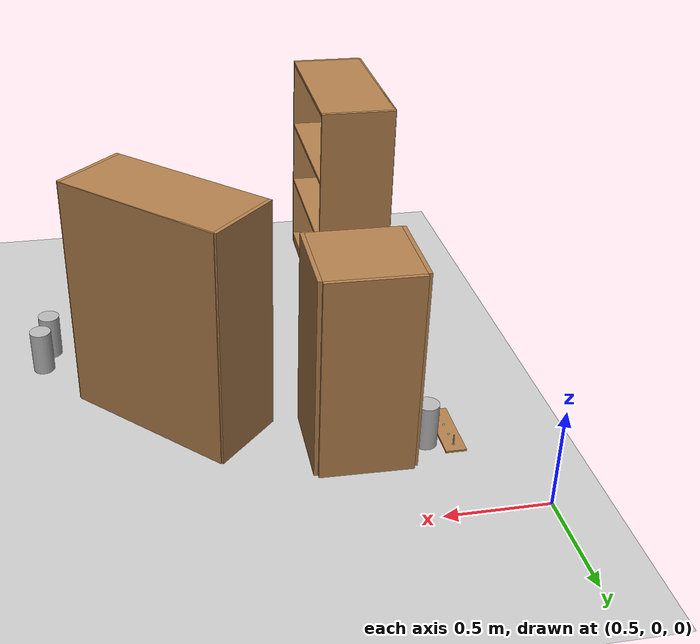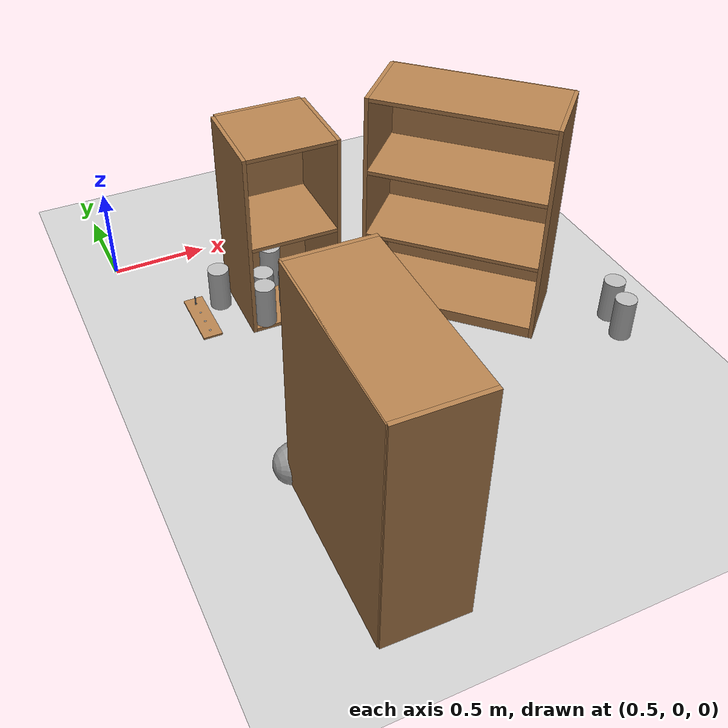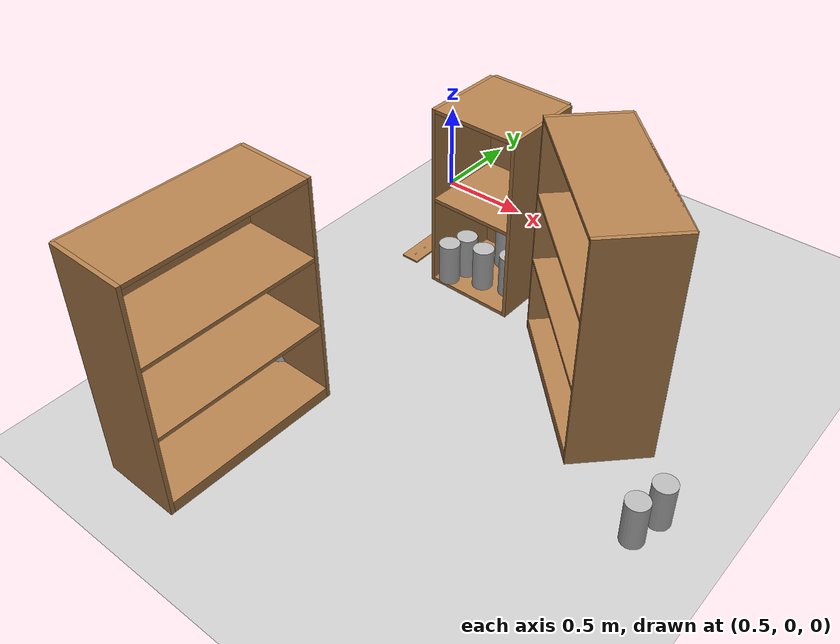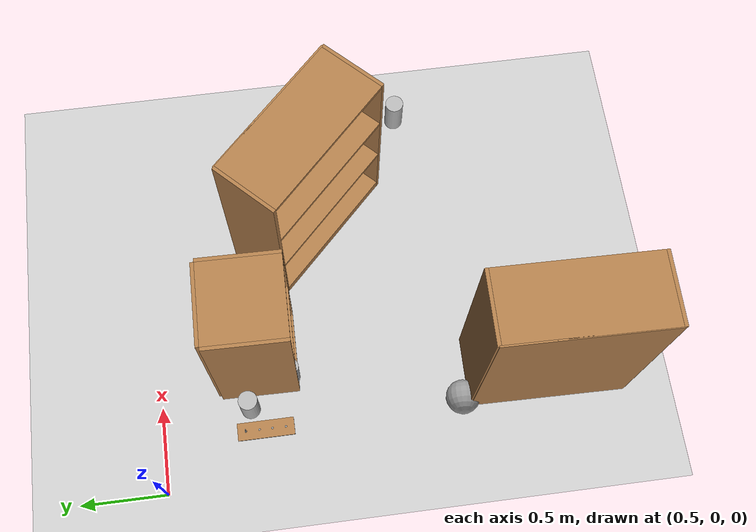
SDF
<sdf version="1.6">
 <world name="default">
  <model name="ground_plane">
   <static>1</static>
   <link name="link">
    <collision name="collision">
     <geometry><plane><normal>0 0 1</normal><size>100 100</size></plane></geometry>
     <surface><friction><ode><mu>100</mu><mu2>50</mu2></ode></friction></surface>
    </collision>
    <visual name="visual">
     <cast_shadows>0</cast_shadows>
     <geometry><plane><normal>0 0 1</normal><size>100 100</size></plane></geometry>
     <material>
      <script><uri>file://media/materials/scripts/gazebo.material</uri><name>Gazebo/Grey</name></script>
     </material>
    </visual>
   </link>
  </model>
  <model name="bookshelf_1">
   <static>1</static>
   <link name="link">
    <inertial><mass>1</mass></inertial>
    <collision name="back">
     <pose>0 0.005 0.6 0 -0 0</pose>
     <geometry><box><size>0.9 0.01 1.2</size></box></geometry>
    </collision>
    <visual name="visual1">
     <pose>0 0.005 0.6 0 -0 0</pose>
     <geometry><box><size>0.9 0.01 1.2</size></box></geometry>
     <material>
      <script><uri>file://media/materials/scripts/gazebo.material</uri><name>Gazebo/Wood</name></script>
     </material>
    </visual>
    <collision name="left_side">
     <pose>0.45 -0.195 0.6 0 -0 0</pose>
     <geometry><box><size>0.02 0.4 1.2</size></box></geometry>
    </collision>
    <visual name="visual2">
     <pose>0.45 -0.195 0.6 0 -0 0</pose>
     <geometry><box><size>0.02 0.4 1.2</size></box></geometry>
     <material>
      <script><uri>file://media/materials/scripts/gazebo.material</uri><name>Gazebo/Wood</name></script>
     </material>
    </visual>
    <collision name="right_side">
     <pose>-0.45 -0.195 0.6 0 -0 0</pose>
     <geometry><box><size>0.02 0.4 1.2</size></box></geometry>
    </collision>
    <visual name="visual3">
     <pose>-0.45 -0.195 0.6 0 -0 0</pose>
     <geometry><box><size>0.02 0.4 1.2</size></box></geometry>
     <material>
      <script><uri>file://media/materials/scripts/gazebo.material</uri><name>Gazebo/Wood</name></script>
     </material>
    </visual>
    <collision name="bottom">
     <pose>0 -0.195 0.03 0 -0 0</pose>
     <geometry><box><size>0.88 0.4 0.06</size></box></geometry>
    </collision>
    <visual name="visual4">
     <pose>0 -0.195 0.03 0 -0 0</pose>
     <geometry><box><size>0.88 0.4 0.06</size></box></geometry>
     <material>
      <script><uri>file://media/materials/scripts/gazebo.material</uri><name>Gazebo/Wood</name></script>
     </material>
    </visual>
    <collision name="top">
     <pose>0 -0.195 1.19 0 -0 0</pose>
     <geometry><box><size>0.88 0.4 0.02</size></box></geometry>
    </collision>
    <visual name="visual5">
     <pose>0 -0.195 1.19 0 -0 0</pose>
     <geometry><box><size>0.88 0.4 0.02</size></box></geometry>
     <material>
      <script><uri>file://media/materials/scripts/gazebo.material</uri><name>Gazebo/Wood</name></script>
     </material>
    </visual>
    <collision name="low_shelf">
     <pose>0 -0.195 0.43 0 -0 0</pose>
     <geometry><box><size>0.88 0.4 0.02</size></box></geometry>
    </collision>
    <visual name="visual6">
     <pose>0 -0.195 0.43 0 -0 0</pose>
     <geometry><box><size>0.88 0.4 0.02</size></box></geometry>
     <material>
      <script><uri>file://media/materials/scripts/gazebo.material</uri><name>Gazebo/Wood</name></script>
     </material>
    </visual>
    <collision name="high_shelf">
     <pose>0 -0.195 0.8 0 -0 0</pose>
     <geometry><box><size>0.88 0.4 0.02</size></box></geometry>
    </collision>
    <visual name="visual7">
     <pose>0 -0.195 0.8 0 -0 0</pose>
     <geometry><box><size>0.88 0.4 0.02</size></box></geometry>
     <material>
      <script><uri>file://media/materials/scripts/gazebo.material</uri><name>Gazebo/Wood</name></script>
     </material>
    </visual>
   </link>
   <pose>0.794142 -2.23341 0 0 -0 1.55315</pose>
  </model>
  <model name="cabinet_0">
   <static>1</static>
   <link name="cabinet_bottom_plate">
    <inertial>
     <pose>0 0 -1 0 -0 0</pose>
     <inertia><ixx>2.05</ixx><ixy>0</ixy><ixz>0</ixz><iyy>2.05</iyy><iyz>0</iyz><izz>2.05</izz></inertia>
     <mass>25</mass>
    </inertial>
    <collision name="cabinet_bottom_plate_geom">
     <pose>0 0 0.01 0 -0 0</pose>
     <geometry><box><size>0.45 0.45 0.02</size></box></geometry>
    </collision>
    <visual name="cabinet_bottom_plate_geom_visual">
     <pose>0 0 0.01 0 -0 0</pose>
     <geometry><box><size>0.45 0.45 0.02</size></box></geometry>
     <material>
      <script><uri>file://media/materials/scripts/gazebo.material</uri><name>Gazebo/Wood</name></script>
     </material>
    </visual>
    <collision name="cabinet_bottom_plate_geom_cabinet_back_plate">
     <pose>0.235 0 0.51 0 -0 0</pose>
     <geometry><box><size>0.02 0.45 1.02</size></box></geometry>
    </collision>
    <visual name="cabinet_bottom_plate_geom_cabinet_back_plate_visual">
     <pose>0.235 0 0.51 0 -0 0</pose>
     <geometry><box><size>0.02 0.45 1.02</size></box></geometry>
     <material>
      <script><uri>file://media/materials/scripts/gazebo.material</uri><name>Gazebo/Wood</name></script>
     </material>
    </visual>
    <collision name="cabinet_bottom_plate_geom_cabinet_left_plate">
     <pose>0 0.235 0.51 0 -0 0</pose>
     <geometry><box><size>0.45 0.02 1.02</size></box></geometry>
    </collision>
    <visual name="cabinet_bottom_plate_geom_cabinet_left_plate_visual">
     <pose>0 0.235 0.51 0 -0 0</pose>
     <geometry><box><size>0.45 0.02 1.02</size></box></geometry>
     <material>
      <script><uri>file://media/materials/scripts/gazebo.material</uri><name>Gazebo/Wood</name></script>
     </material>
    </visual>
    <collision name="cabinet_bottom_plate_geom_cabinet_middle_plate">
     <pose>0 0 0.51 0 -0 0</pose>
     <geometry><box><size>0.45 0.45 0.02</size></box></geometry>
    </collision>
    <visual name="cabinet_bottom_plate_geom_cabinet_middle_plate_visual">
     <pose>0 0 0.51 0 -0 0</pose>
     <geometry><box><size>0.45 0.45 0.02</size></box></geometry>
     <material>
      <script><uri>file://media/materials/scripts/gazebo.material</uri><name>Gazebo/Wood</name></script>
     </material>
    </visual>
    <collision name="cabinet_bottom_plate_geom_cabinet_right_plate">
     <pose>0 -0.235 0.51 0 -0 0</pose>
     <geometry><box><size>0.45 0.02 1.02</size></box></geometry>
    </collision>
    <visual name="cabinet_bottom_plate_geom_cabinet_right_plate_visual">
     <pose>0 -0.235 0.51 0 -0 0</pose>
     <geometry><box><size>0.45 0.02 1.02</size></box></geometry>
     <material>
      <script><uri>file://media/materials/scripts/gazebo.material</uri><name>Gazebo/Wood</name></script>
     </material>
    </visual>
    <collision name="cabinet_bottom_plate_geom_cabinet_top_plate">
     <pose>0 0 1.01 0 -0 0</pose>
     <geometry><box><size>0.45 0.45 0.02</size></box></geometry>
    </collision>
    <visual name="cabinet_bottom_plate_geom_cabinet_top_plate_visual">
     <pose>0 0 1.01 0 -0 0</pose>
     <geometry><box><size>0.45 0.45 0.02</size></box></geometry>
     <material>
      <script><uri>file://media/materials/scripts/gazebo.material</uri><name>Gazebo/Wood</name></script>
     </material>
    </visual>
   </link>
   <pose>1.25355 -0.582326 0 0 -0 1.55362</pose>
  </model>
  <model name="bookshelf_2">
   <static>1</static>
   <link name="link">
    <inertial><mass>1</mass></inertial>
    <collision name="back">
     <pose>0 0.005 0.6 0 -0 0</pose>
     <geometry><box><size>0.9 0.01 1.2</size></box></geometry>
    </collision>
    <visual name="visual1">
     <pose>0 0.005 0.6 0 -0 0</pose>
     <geometry><box><size>0.9 0.01 1.2</size></box></geometry>
     <material>
      <script><uri>file://media/materials/scripts/gazebo.material</uri><name>Gazebo/Wood</name></script>
     </material>
    </visual>
    <collision name="left_side">
     <pose>0.45 -0.195 0.6 0 -0 0</pose>
     <geometry><box><size>0.02 0.4 1.2</size></box></geometry>
    </collision>
    <visual name="visual2">
     <pose>0.45 -0.195 0.6 0 -0 0</pose>
     <geometry><box><size>0.02 0.4 1.2</size></box></geometry>
     <material>
      <script><uri>file://media/materials/scripts/gazebo.material</uri><name>Gazebo/Wood</name></script>
     </material>
    </visual>
    <collision name="right_side">
     <pose>-0.45 -0.195 0.6 0 -0 0</pose>
     <geometry><box><size>0.02 0.4 1.2</size></box></geometry>
    </collision>
    <visual name="visual3">
     <pose>-0.45 -0.195 0.6 0 -0 0</pose>
     <geometry><box><size>0.02 0.4 1.2</size></box></geometry>
     <material>
      <script><uri>file://media/materials/scripts/gazebo.material</uri><name>Gazebo/Wood</name></script>
     </material>
    </visual>
    <collision name="bottom">
     <pose>0 -0.195 0.03 0 -0 0</pose>
     <geometry><box><size>0.88 0.4 0.06</size></box></geometry>
    </collision>
    <visual name="visual4">
     <pose>0 -0.195 0.03 0 -0 0</pose>
     <geometry><box><size>0.88 0.4 0.06</size></box></geometry>
     <material>
      <script><uri>file://media/materials/scripts/gazebo.material</uri><name>Gazebo/Wood</name></script>
     </material>
    </visual>
    <collision name="top">
     <pose>0 -0.195 1.19 0 -0 0</pose>
     <geometry><box><size>0.88 0.4 0.02</size></box></geometry>
    </collision>
    <visual name="visual5">
     <pose>0 -0.195 1.19 0 -0 0</pose>
     <geometry><box><size>0.88 0.4 0.02</size></box></geometry>
     <material>
      <script><uri>file://media/materials/scripts/gazebo.material</uri><name>Gazebo/Wood</name></script>
     </material>
    </visual>
    <collision name="low_shelf">
     <pose>0 -0.195 0.43 0 -0 0</pose>
     <geometry><box><size>0.88 0.4 0.02</size></box></geometry>
    </collision>
    <visual name="visual6">
     <pose>0 -0.195 0.43 0 -0 0</pose>
     <geometry><box><size>0.88 0.4 0.02</size></box></geometry>
     <material>
      <script><uri>file://media/materials/scripts/gazebo.material</uri><name>Gazebo/Wood</name></script>
     </material>
    </visual>
    <collision name="high_shelf">
     <pose>0 -0.195 0.8 0 -0 0</pose>
     <geometry><box><size>0.88 0.4 0.02</size></box></geometry>
    </collision>
    <visual name="visual7">
     <pose>0 -0.195 0.8 0 -0 0</pose>
     <geometry><box><size>0.88 0.4 0.02</size></box></geometry>
     <material>
      <script><uri>file://media/materials/scripts/gazebo.material</uri><name>Gazebo/Wood</name></script>
     </material>
    </visual>
   </link>
   <pose>2.22399 -0.837147 0 0 0 -0.779094</pose>
  </model>
  <model name="beer_9">
   <link name="link">
    <pose>0 0 0.115 0 -0 0</pose>
    <inertial>
     <mass>0.39</mass>
     <inertia><ixx>0.00058</ixx><ixy>0</ixy><ixz>0</ixz><iyy>0.00058</iyy><iyz>0</iyz><izz>0.00019</izz></inertia>
    </inertial>
    <collision name="collision">
     <geometry><cylinder><radius>0.055</radius><length>0.23</length></cylinder></geometry>
    </collision>
    <visual name="visual">
     <geometry><cylinder><radius>0.055</radius><length>0.23</length></cylinder></geometry>
     <material>
      <script>
       <uri>model://beer/materials/scripts</uri>
       <uri>model://beer/materials/textures</uri>
       <name>Beer/Diffuse</name>
      </script>
     </material>
    </visual>
   </link>
   <pose>1.12299 -0.654374 0.019992 2.8e-05 1.4e-05 -0.00199</pose>
  </model>
  <model name="beer_10">
   <link name="link">
    <pose>0 0 0.115 0 -0 0</pose>
    <inertial>
     <mass>0.39</mass>
     <inertia><ixx>0.00058</ixx><ixy>0</ixy><ixz>0</ixz><iyy>0.00058</iyy><iyz>0</iyz><izz>0.00019</izz></inertia>
    </inertial>
    <collision name="collision">
     <geometry><cylinder><radius>0.055</radius><length>0.23</length></cylinder></geometry>
    </collision>
    <visual name="visual">
     <geometry><cylinder><radius>0.055</radius><length>0.23</length></cylinder></geometry>
     <material>
      <script>
       <uri>model://beer/materials/scripts</uri>
       <uri>model://beer/materials/textures</uri>
       <name>Beer/Diffuse</name>
      </script>
     </material>
    </visual>
   </link>
   <pose>1.254 -0.686057 0.019992 2.6e-05 2e-06 0.002284</pose>
  </model>
  <model name="beer_11">
   <link name="link">
    <pose>0 0 0.115 0 -0 0</pose>
    <inertial>
     <mass>0.39</mass>
     <inertia><ixx>0.00058</ixx><ixy>0</ixy><ixz>0</ixz><iyy>0.00058</iyy><iyz>0</iyz><izz>0.00019</izz></inertia>
    </inertial>
    <collision name="collision">
     <geometry><cylinder><radius>0.055</radius><length>0.23</length></cylinder></geometry>
    </collision>
    <visual name="visual">
     <geometry><cylinder><radius>0.055</radius><length>0.23</length></cylinder></geometry>
     <material>
      <script>
       <uri>model://beer/materials/scripts</uri>
       <uri>model://beer/materials/textures</uri>
       <name>Beer/Diffuse</name>
      </script>
     </material>
    </visual>
   </link>
   <pose>1.39383 -0.647676 0.019992 2.5e-05 -2e-05 -0.002157</pose>
  </model>
  <model name="beer_12">
   <link name="link">
    <pose>0 0 0.115 0 -0 0</pose>
    <inertial>
     <mass>0.39</mass>
     <inertia><ixx>0.00058</ixx><ixy>0</ixy><ixz>0</ixz><iyy>0.00058</iyy><iyz>0</iyz><izz>0.00019</izz></inertia>
    </inertial>
    <collision name="collision">
     <geometry><cylinder><radius>0.055</radius><length>0.23</length></cylinder></geometry>
    </collision>
    <visual name="visual">
     <geometry><cylinder><radius>0.055</radius><length>0.23</length></cylinder></geometry>
     <material>
      <script>
       <uri>model://beer/materials/scripts</uri>
       <uri>model://beer/materials/textures</uri>
       <name>Beer/Diffuse</name>
      </script>
     </material>
    </visual>
   </link>
   <pose>1.23577 -0.463257 0.020002 3.7e-05 2.3e-05 0.001024</pose>
  </model>
  <model name="beer_13">
   <link name="link">
    <pose>0 0 0.115 0 -0 0</pose>
    <inertial>
     <mass>0.39</mass>
     <inertia><ixx>0.00058</ixx><ixy>0</ixy><ixz>0</ixz><iyy>0.00058</iyy><iyz>0</iyz><izz>0.00019</izz></inertia>
    </inertial>
    <collision name="collision">
     <geometry><cylinder><radius>0.055</radius><length>0.23</length></cylinder></geometry>
    </collision>
    <visual name="visual">
     <geometry><cylinder><radius>0.055</radius><length>0.23</length></cylinder></geometry>
     <material>
      <script>
       <uri>model://beer/materials/scripts</uri>
       <uri>model://beer/materials/textures</uri>
       <name>Beer/Diffuse</name>
      </script>
     </material>
    </visual>
   </link>
   <pose>1.09037 -0.759426 0.020002 2.7e-05 -7e-06 -0.059388</pose>
  </model>
  <model name="beer_14">
   <link name="link">
    <pose>0 0 0.115 0 -0 0</pose>
    <inertial>
     <mass>0.39</mass>
     <inertia><ixx>0.00058</ixx><ixy>0</ixy><ixz>0</ixz><iyy>0.00058</iyy><iyz>0</iyz><izz>0.00019</izz></inertia>
    </inertial>
    <collision name="collision">
     <geometry><cylinder><radius>0.055</radius><length>0.23</length></cylinder></geometry>
    </collision>
    <visual name="visual">
     <geometry><cylinder><radius>0.055</radius><length>0.23</length></cylinder></geometry>
     <material>
      <script>
       <uri>model://beer/materials/scripts</uri>
       <uri>model://beer/materials/textures</uri>
       <name>Beer/Diffuse</name>
      </script>
     </material>
    </visual>
   </link>
   <pose>0.931321 -0.508087 -7e-06 -1e-06 -0 -3.5e-05</pose>
  </model>
  <model name="beer_20">
   <link name="link">
    <pose>0 0 0.115 0 -0 0</pose>
    <inertial>
     <mass>0.39</mass>
     <inertia><ixx>0.00058</ixx><ixy>0</ixy><ixz>0</ixz><iyy>0.00058</iyy><iyz>0</iyz><izz>0.00019</izz></inertia>
    </inertial>
    <collision name="collision">
     <geometry><cylinder><radius>0.055</radius><length>0.23</length></cylinder></geometry>
    </collision>
    <visual name="visual">
     <geometry><cylinder><radius>0.055</radius><length>0.23</length></cylinder></geometry>
     <material>
      <script>
       <uri>model://beer/materials/scripts</uri>
       <uri>model://beer/materials/textures</uri>
       <name>Beer/Diffuse</name>
      </script>
     </material>
    </visual>
   </link>
   <pose>2.74055 -1.44972 -8e-06 -1e-06 -0 -0.011073</pose>
  </model>
  <model name="beer_21">
   <link name="link">
    <pose>0 0 0.115 0 -0 0</pose>
    <inertial>
     <mass>0.39</mass>
     <inertia><ixx>0.00058</ixx><ixy>0</ixy><ixz>0</ixz><iyy>0.00058</iyy><iyz>0</iyz><izz>0.00019</izz></inertia>
    </inertial>
    <collision name="collision">
     <geometry><cylinder><radius>0.055</radius><length>0.23</length></cylinder></geometry>
    </collision>
    <visual name="visual">
     <geometry><cylinder><radius>0.055</radius><length>0.23</length></cylinder></geometry>
     <material>
      <script>
       <uri>model://beer/materials/scripts</uri>
       <uri>model://beer/materials/textures</uri>
       <name>Beer/Diffuse</name>
      </script>
     </material>
    </visual>
   </link>
   <pose>2.70425 -1.59811 0.000865 0.014242 -0.006713 -1.58114</pose>
  </model>
  <model name="metal_peg_board_5">
   <link name="wooden_board::base">
    <pose>0 0 0.00523 0 -0 0</pose>
    <inertial>
     <mass>0.2765</mass>
     <inertia>
      <ixx>0.0025148</ixx>
      <ixy>0</ixy>
      <ixz>0</ixz>
      <iyy>0.00024037</iyy>
      <iyz>0</iyz>
      <izz>0.00275013</izz>
     </inertia>
    </inertial>
    <collision name="collision">
     <geometry><box><size>0.1016 0.3302 0.01046</size></box></geometry>
     <surface>
      <contact>
       <poissons_ratio>0.347</poissons_ratio>
       <elastic_modulus>8.8e+09</elastic_modulus>
       <ode><kp>100000</kp><kd>100</kd><max_vel>100</max_vel><min_depth>0.001</min_depth></ode>
      </contact>
      <friction>
       <torsional>
        <coefficient>1</coefficient>
        <use_patch_radius>0</use_patch_radius>
        <surface_radius>0.01</surface_radius>
       </torsional>
      </friction>
     </surface>
    </collision>
    <visual name="visual">
     <geometry><box><size>0.1016 0.3302 0.01046</size></box></geometry>
     <material>
      <script><uri>file://media/materials/scripts/gazebo.material</uri><name>Gazebo/Wood</name></script>
     </material>
    </visual>
    <visual name="tee_nut_1">
     <pose>0 -0.116 0 0 -0 0</pose>
     <geometry><cylinder><radius>0.00635</radius><length>0.0105646</length></cylinder></geometry>
     <material>
      <script><uri>file://media/materials/scripts/gazebo.material</uri><name>Gazebo/Grey</name></script>
     </material>
    </visual>
    <visual name="tee_nut_2">
     <pose>0 -0.038 0 0 -0 0</pose>
     <geometry><cylinder><radius>0.00635</radius><length>0.0105646</length></cylinder></geometry>
     <material>
      <script><uri>file://media/materials/scripts/gazebo.material</uri><name>Gazebo/Grey</name></script>
     </material>
    </visual>
    <visual name="tee_nut_3">
     <pose>0 0.038 0 0 -0 0</pose>
     <geometry><cylinder><radius>0.00635</radius><length>0.0105646</length></cylinder></geometry>
     <material>
      <script><uri>file://media/materials/scripts/gazebo.material</uri><name>Gazebo/Grey</name></script>
     </material>
    </visual>
    <visual name="tee_nut_4">
     <pose>0 0.116 0 0 -0 0</pose>
     <geometry><cylinder><radius>0.00635</radius><length>0.0105646</length></cylinder></geometry>
     <material>
      <script><uri>file://media/materials/scripts/gazebo.material</uri><name>Gazebo/Grey</name></script>
     </material>
    </visual>
   </link>
   <link name="peg::link">
    <pose>0 0.116 0.031 0 -0 0</pose>
    <inertial>
     <mass>0.0121</mass>
     <inertia>
      <ixx>3.90898e-06</ixx>
      <ixy>0</ixy>
      <ixz>0</ixz>
      <iyy>3.90898e-06</iyy>
      <iyz>0</iyz>
      <izz>6.58845e-08</izz>
     </inertia>
    </inertial>
    <collision name="collision">
     <geometry><cylinder><radius>0.0033</radius><length>0.062</length></cylinder></geometry>
     <surface>
      <contact>
       <poissons_ratio>0.305</poissons_ratio>
       <elastic_modulus>2e+11</elastic_modulus>
       <ode><kp>100000</kp><kd>100</kd><max_vel>100</max_vel><min_depth>0.001</min_depth></ode>
      </contact>
      <friction>
       <torsional>
        <coefficient>1</coefficient>
        <use_patch_radius>0</use_patch_radius>
        <surface_radius>0.01</surface_radius>
       </torsional>
      </friction>
     </surface>
    </collision>
    <visual name="visual">
     <geometry><cylinder><radius>0.0033</radius><length>0.062</length></cylinder></geometry>
     <material>
      <script><uri>file://media/materials/scripts/gazebo.material</uri><name>Gazebo/Grey</name></script>
     </material>
    </visual>
   </link>
   <joint name="board_peg" type="revolute">
    <parent>wooden_board::base</parent>
    <child>peg::link</child>
    <axis>
     <xyz>0 0 1</xyz>
     <limit><upper>0</upper><lower>0</lower></limit>
     <use_parent_model_frame>0</use_parent_model_frame>
     <dynamics><spring_reference>0</spring_reference><spring_stiffness>0</spring_stiffness></dynamics>
    </axis>
   </joint>
   <pose>0.804705 -0.582834 -0.001003 4e-06 2.3e-05 0.000197</pose>
  </model>
  <model name="my_ball_3">
   <link name="link_0">
    <inertial>
     <mass>1</mass>
     <inertia><ixx>0.1</ixx><ixy>0</ixy><ixz>0</ixz><iyy>0.1</iyy><iyz>0</iyz><izz>0.1</izz></inertia>
    </inertial>
    <visual name="visual">
     <geometry><sphere><radius>0.1</radius></sphere></geometry>
     <material>
      <lighting>1</lighting>
      <script><uri>file://media/materials/scripts/gazebo.material</uri><name>Gazebo/Grey</name></script>
      <shader type="pixel"><normal_map>__default__</normal_map></shader>
      <ambient>1 1 1 1</ambient>
      <diffuse>1 1 1 1</diffuse>
      <specular>1 1 1 1</specular>
      <emissive>0 0 0 1</emissive>
     </material>
    </visual>
    <collision name="collision">
     <geometry><sphere><radius>0.1</radius></sphere></geometry>
     <surface>
      <friction>
       <ode><mu>1</mu><mu2>1</mu2><fdir1>0 0 0</fdir1><slip1>0</slip1><slip2>0</slip2></ode>
       <torsional>
        <coefficient>1</coefficient>
        <patch_radius>0</patch_radius>
        <surface_radius>0</surface_radius>
        <use_patch_radius>1</use_patch_radius>
        <ode><slip>0</slip></ode>
       </torsional>
      </friction>
      <bounce><restitution_coefficient>0</restitution_coefficient><threshold>1e+06</threshold></bounce>
      <contact>
       <collide_without_contact>0</collide_without_contact>
       <collide_without_contact_bitmask>1</collide_without_contact_bitmask>
       <collide_bitmask>1</collide_bitmask>
       <ode>
        <soft_cfm>0</soft_cfm>
        <soft_erp>0.2</soft_erp>
        <kp>1e+13</kp>
        <kd>1</kd>
        <max_vel>0.01</max_vel>
        <min_depth>0</min_depth>
       </ode>
       <bullet>
        <split_impulse>1</split_impulse>
        <split_impulse_penetration_threshold>-0.01</split_impulse_penetration_threshold>
        <soft_cfm>0</soft_cfm>
        <soft_erp>0.2</soft_erp>
        <kp>1e+13</kp>
        <kd>1</kd>
       </bullet>
      </contact>
     </surface>
    </collision>
   </link>
   <static>0</static>
   <pose>0.840202 -1.74039 0.035432 1.71667 -0.443498 1.4358</pose>
  </model>
 </world>
</sdf>
